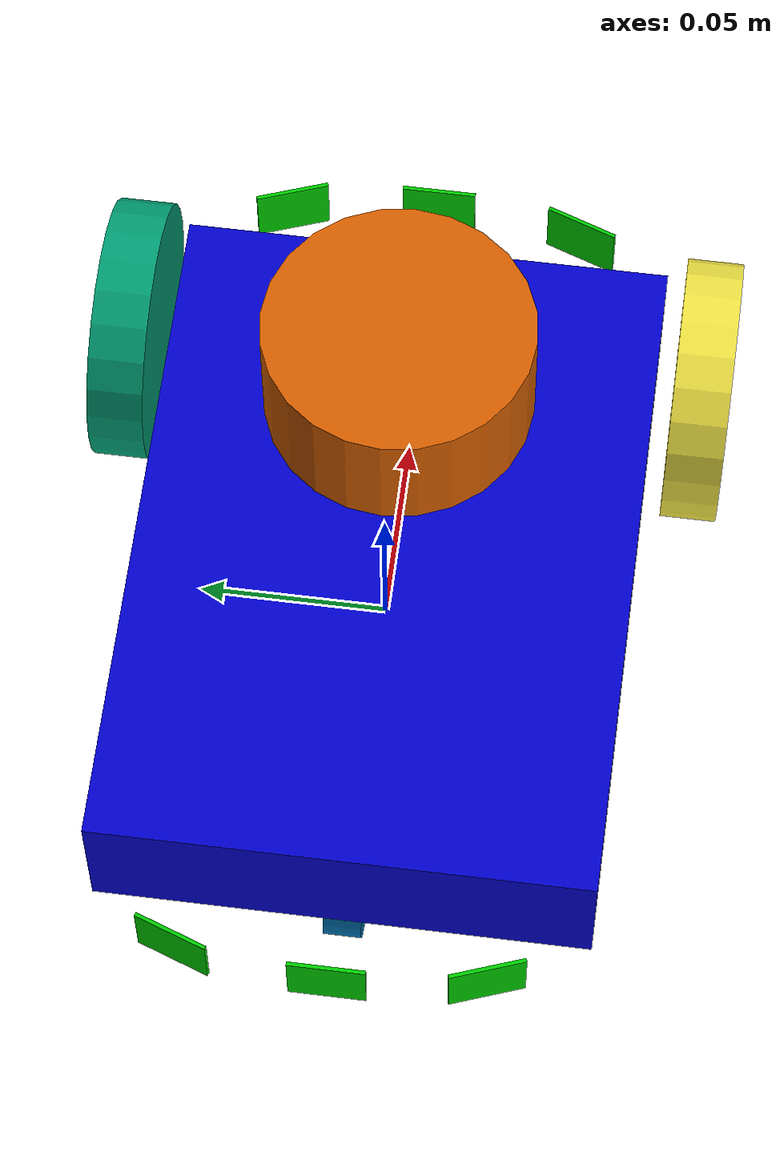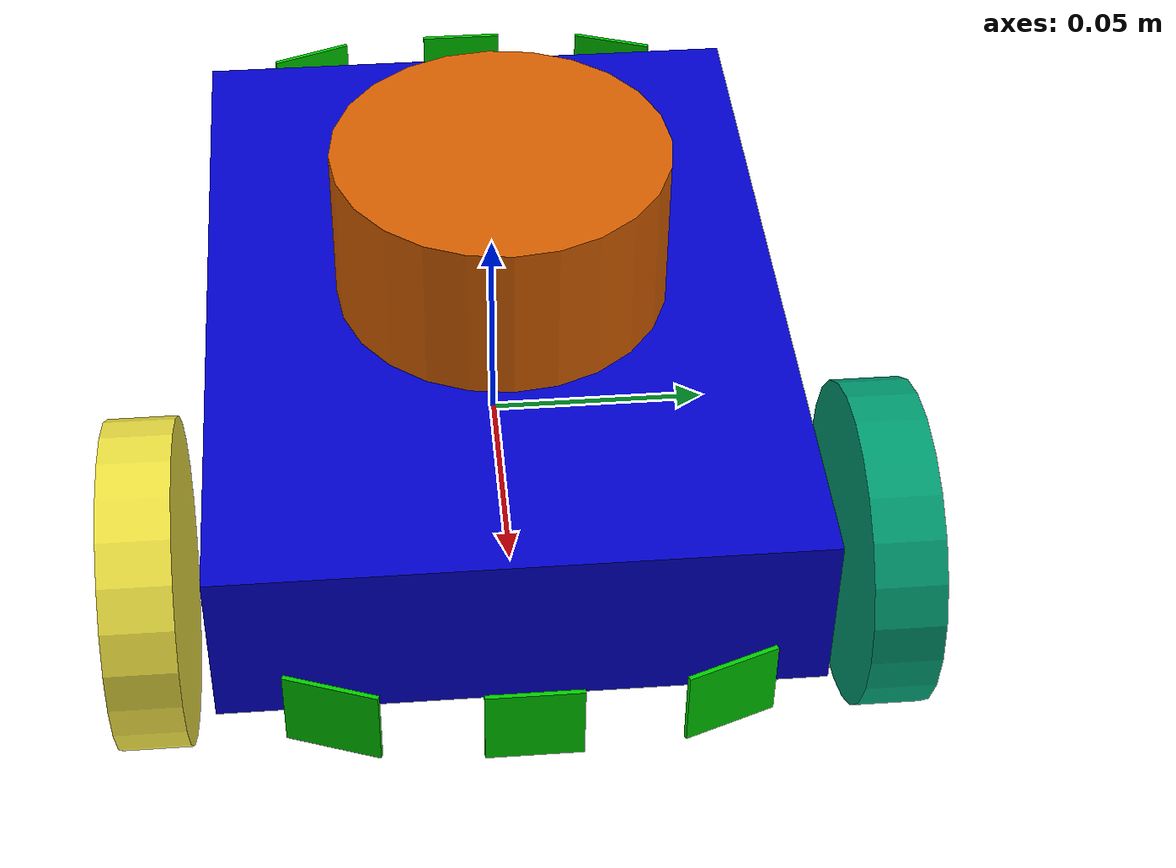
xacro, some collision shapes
<?xml version="1.0"?>
<robot name="my_robot" xmlns:xacro="http://www.ros.org/wiki/xacro">

<xacro:property name="wheel_radius" value="0.035"/>
<xacro:property name="wheel_width" value="0.015"/>
<xacro:property name="wheel_chassis_lenght_clearense" value ="0.022"/>
<xacro:property name="wheel_mass" value="1"/>
<xacro:property name="wheelbase_length" value="0.16"/>
<xacro:property name="wheel_chassis_offset" value="0.005"/>
<xacro:property name="parasite_wheel_radius" value="0.01"/>
<xacro:property name="parasite_wheel_width" value="0.01"/>
<xacro:property name="parasite_wheel_mass" value="1"/>
<xacro:property name="parasite_wheel_base_lenght_offset" value="0.01"/>
<xacro:property name="sx" value="0.001"/>
<xacro:property name="sy" value="0.02"/>
<xacro:property name="sz" value="0.018"/>
<xacro:property name="sensors_base_lenght_offset" value="0.025"/>
<xacro:property name="sensors_side_base_lenght_offset" value="0.02"/>
<xacro:property name="sensors_base_width_offset" value="-0.025"/>
<xacro:property name="chassis_length" value="0.18"/>
<xacro:property name="chassis_width" value="0.13"/>
<xacro:property name="chassis_height" value="0.039"/>
<xacro:property name="chassis_clearance" value="0.019"/>
<xacro:property name="chassis_mass" value="10"/>
<xacro:property name="lidar_to_base_height_clearence" value="0.021"/>
<xacro:property name="lidar_to_base_lenght_clearence" value="0.06"/>
<xacro:property name="lidar_radius" value="0.035"/>
<xacro:property name="lidar_height" value="0.035"/>
<xacro:property name="PI" value="3.1415926535897931"/>

<xacro:include filename="$(find my_description)/urdf/inertia.xacro"/>
<xacro:include filename="$(find my_description)/urdf/macros.xacro"/>
<xacro:include filename="$(find my_description)/urdf/materials.xacro"/>

<link name = "world_link">
</link>

<joint name="world_to_base_link_joint" type="fixed">
    <parent link="world_link"/>
    <child link="base_link"/>
    <origin xyz="0.0 0.0 0.0" rpy="0 0 0"/>
</joint>

<link name="base_link">
    <visual>
        <origin xyz="0 0 ${chassis_clearance}" rpy="0 0 0"/>
        <geometry>
            <box size="${chassis_length} ${chassis_width} ${chassis_height}"/>
        </geometry>
        <material name="blue"/>
    </visual>
    <collision>
        <origin xyz="0 0 ${chassis_clearance}" rpy = "0 0 0"/>
        <geometry>
            <box size = "${chassis_length} ${chassis_width} ${chassis_height}"/>
        </geometry>
    </collision>

    <xacro:inertial_box mass="${chassis_mass}" x="${chassis_length}" y="${chassis_width}" z="${chassis_height}">
        <origin xyz="0 0 ${chassis_clearance}" rpy = "0 0 0"/>
    </xacro:inertial_box>
</link>

<xacro:wheel_macro parent_link="base_link" wheel_prefix="left" wheel_side="-1" width="${wheel_width}" radius="${wheel_radius}" mass="${wheel_mass}">
    <origin xyz= "${chassis_length/2 - wheel_chassis_lenght_clearense} ${chassis_width/2 + wheel_width/2 + wheel_chassis_offset} ${wheel_radius/2}"/>
    <!-- расположен посередине  расстояние от центра массы {/2 потому-что от центра}  {высота положения}-->
</xacro:wheel_macro>

<xacro:wheel_macro parent_link="base_link" wheel_prefix="right" wheel_side="1" width="${wheel_width}" radius="${wheel_radius}" mass="${wheel_mass}">
    <origin xyz= "${chassis_length/2 - wheel_chassis_lenght_clearense} ${-chassis_width/2 - wheel_width/2 - wheel_chassis_offset} ${wheel_radius/2}"/>
</xacro:wheel_macro>

<joint name = "parasite_wheel_joint" type="fixed">
    <parent link = "base_link"/>
    <child link = "parasite_wheel_link"/>
    <origin rpy="0 0 0" xyz="${-chassis_length/2 + parasite_wheel_base_lenght_offset} 0 ${-chassis_clearance/2}"/>
</joint>

<link name = "parasite_wheel_link">
    <visual>
         <geometry>
            <cylinder length="${parasite_wheel_width}" radius="${parasite_wheel_radius}"/>
        </geometry>
        <origin rpy="${PI/2} 0 0" xyz="0 0 0"/>
    </visual>

    <collision>
        <geometry>
            <cylinder length="${parasite_wheel_width}" radius="${parasite_wheel_radius}"/>
        </geometry>
        <origin rpy="${PI/2} 0 0" xyz="0 0 0"/>
    </collision>

    <xacro:inertial_cylinder mass ="${parasite_wheel_mass}" length = "${parasite_wheel_width}" radius = "${parasite_wheel_radius}">
        <origin rpy="${PI/2} 0 0" xyz="0 0 0"/>
    </xacro:inertial_cylinder>
</link>

<joint name="base_to_lidar_joint" type="fixed">
    <parent link="base_link"/>
    <child link="lidar_link"/>
    <origin rpy="0 0 ${PI}" xyz="${chassis_length/2 -lidar_to_base_lenght_clearence} 0 ${chassis_height + lidar_to_base_height_clearence}"/>
    <!-- развернутый на 180 градусов  высота относительно base-->
</joint>

<link name = "lidar_link">
    <collision>
        <origin rpy="0 0 0" xyz="0 0 ${lidar_to_base_height_clearence}"/>
      <geometry>
        <cylinder length="${lidar_height}" radius="${lidar_radius}"/>
      </geometry>
    </collision>

    <visual>
        <geometry>
            <cylinder length="${lidar_height}" radius="${lidar_radius}"/>
        </geometry>
        <origin rpy="0 0 0" xyz="0 0 ${lidar_to_base_height_clearence}"/>
    </visual>
</link>

<xacro:ir_sensor name="front_left" parent="base_link" sx="${sx}" sy="${sy}" sz="${sz}">
    <origin rpy="0 0 ${-(20)*PI/180}" xyz="${chassis_length/2 + sensors_side_base_lenght_offset} ${-chassis_width/2 - sensors_base_width_offset} 0.02"/>
</xacro:ir_sensor>

<xacro:ir_sensor name="front_center" parent="base_link" sx="${sx}" sy="${sy}" sz="${sz}">
    <origin rpy="0 0 0" xyz="${chassis_length/2 + sensors_base_lenght_offset} 0 0.02"/>
</xacro:ir_sensor>

<xacro:ir_sensor name="front_right" parent="base_link" sx="${sx}" sy="${sy}" sz="${sz}">
    <origin rpy="0 0 ${(20)*PI/180}" xyz="${chassis_length/2 + sensors_side_base_lenght_offset} ${chassis_width/2 + sensors_base_width_offset} 0.02"/>
</xacro:ir_sensor>

<xacro:ir_sensor name="back_left" parent="base_link" sx="${sx}" sy="${sy}" sz="${sz}">
    <origin rpy="0 0 ${-(160)*PI/180}" xyz="${-chassis_length/2 - sensors_side_base_lenght_offset} ${-chassis_width/2 - sensors_base_width_offset} 0.02"/>
</xacro:ir_sensor>

<xacro:ir_sensor name="back_center" parent="base_link" sx="${sx}" sy="${sy}" sz="${sz}">
    <origin rpy="0 0 0" xyz="${-chassis_length/2 - sensors_base_lenght_offset} 0 0.02"/>
</xacro:ir_sensor>

<xacro:ir_sensor name="back_right" parent="base_link" sx="${sx}" sy="${sy}" sz="${sz}">
    <origin rpy="0 0 ${(160)*PI/180}" xyz="${-chassis_length/2 - sensors_side_base_lenght_offset} ${chassis_width/2 + sensors_base_width_offset} 0.02"/>
</xacro:ir_sensor>

</robot>

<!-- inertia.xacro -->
<robot xmlns:xacro="http://ros.org/wiki/xacro">

<!-- inertia macros -->
<xacro:macro name="inertial_sphere" params="mass radius *origin">
    <inertial>
        <xacro:insert_block name="origin"/>
        <mass value="${mass}" />
        <inertia ixx="${(2/5) * mass * (radius*radius)}" ixy="0.0" ixz="0.0"
                iyy="${(2/5) * mass * (radius*radius)}" iyz="0.0"
                izz="${(2/5) * mass * (radius*radius)}" /> <!-- на вики или в ютюбе есть расчет матрицы инерций для простых форм -->
    </inertial>
</xacro:macro>

<xacro:macro name="inertial_box" params="mass x y z *origin">
    <inertial>
        <xacro:insert_block name="origin"/>
        <mass value="${mass}" />
        <inertia ixx="${(1/12) * mass * (y*y+z*z)}" ixy="0.0" ixz="0.0"
                iyy="${(1/12) * mass * (x*x+z*z)}" iyz="0.0"
                izz="${(1/12) * mass * (x*x+y*y)}" />
    </inertial>
</xacro:macro>

<xacro:macro name="inertial_cylinder" params="mass length radius *origin">
    <inertial>
        <xacro:insert_block name="origin"/>
        <mass value="${mass}" />
        <inertia ixx="${(1/12) * mass * (3*radius*radius + length*length)}" ixy="0.0" ixz="0.0"
                iyy="${(1/12) * mass * (3*radius*radius + length*length)}" iyz="0.0"
                izz="${(1/2) * mass * (radius*radius)}" />
    </inertial>
</xacro:macro>

</robot>

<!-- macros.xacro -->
<robot xmlns:xacro="http://ros.org/wiki/xacro">

<!-- wheel macros -->
  <xacro:macro name ="wheel_macro" params = "parent_link wheel_prefix wheel_side width radius mass *joint_origin">
      <link name = "${wheel_prefix}_wheel_link">
          <visual>
              <geometry>
                  <mesh filename="package://my_description/meshes/tire.dae" scale="${radius} ${radius} ${width/2}"/>
              </geometry>
              <origin rpy="${wheel_side * PI/2} 0 0" xyz="0 0 0"/>
          </visual>

          <collision>
              <geometry>
                  <cylinder length="${width}" radius="${radius}"/>
              </geometry>
              <origin rpy="${PI/2} 0 0" xyz="0 0 0"/>
          </collision>

          <xacro:inertial_cylinder mass ="${mass}" length = "${width}" radius = "${radius}">
            <origin rpy="${PI/2} 0 0" xyz="0 0 0"/>
          </xacro:inertial_cylinder>
      </link>

      <joint name = "${wheel_prefix}_wheel_joint" type="continuous">
          <parent link = "${parent_link}"/>
          <child link = "${wheel_prefix}_wheel_link"/>
          <xacro:insert_block name = "joint_origin"/>
          <axis rpy="0 0 0" xyz="0 1 0"/> <!-- двигаться вокруг оси а не в ее направлении -->
      </joint>

    <!-- https://answers.ros.org/question/27502/gazebo-and-transmissions-mechanicalreduction-and-motortorqueconstant/
         http://wiki.ros.org/urdf/XML/Transmission -->
    <transmission name="${wheel_prefix}_wheel_transmission" type="SimpleTransmission">
        <type> transmission_interface/SimpleTransmission</type>
        <actuator name = "${wheel_prefix}_wheel_actuator">
          <mechanicalReduction>1</mechanicalReduction>
        </actuator>
        <joint name="${wheel_prefix}_wheel_joint">
          <hardwareInterface>hardware_interface/VelocityJointInterface</hardwareInterface>
        </joint>
    </transmission>
  </xacro:macro>
<!-- ir_sensor macros -->

  <xacro:macro name="ir_sensor" params="name parent sx sy sz *origin">
    <link name="ir_sensor_${name}">
      <visual>
        <origin rpy="0 0 0" xyz="0 0 0"/>
        <geometry>
          <box size="${sx} ${sy} ${sz}"/>
        </geometry>
        <material name="green"/>
      </visual>
    </link>
    <joint name="ir_sensor_${name}_joint" type="fixed">
      <parent link="${parent}"/>
      <child link="ir_sensor_${name}"/>
      <xacro:insert_block name="origin"/>
    </joint>
  </xacro:macro>

</robot>

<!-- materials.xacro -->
<robot>

  <material name="black">  <!-- набор цветов -->
    <color rgba="0.0 0.0 0.0 1.0"/>
  </material>

  <material name="blue">
    <color rgba="0.0 0.0 0.8 1.0"/>
  </material>

  <material name="green">
    <color rgba="0.0 0.8 0.0 1.0"/>
  </material>

  <material name="grey">
    <color rgba="0.2 0.2 0.2 1.0"/>
  </material>

  <material name="orange">
    <color rgba="${255/255} ${108/255} ${10/255} 1.0"/>
  </material>

  <material name="brown">
    <color rgba="${222/255} ${207/255} ${195/255} 1.0"/>
  </material>

  <material name="red">
    <color rgba="0.8 0.0 0.0 1.0"/>
  </material>

  <material name="white">
    <color rgba="1.0 1.0 1.0 1.0"/>
  </material>

</robot>
